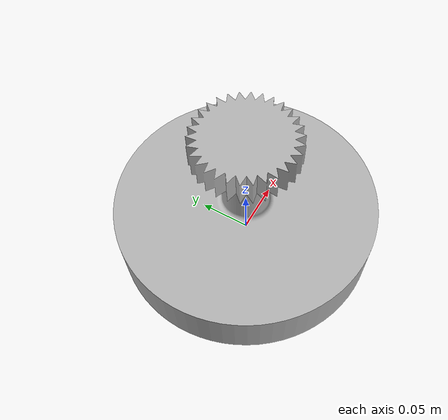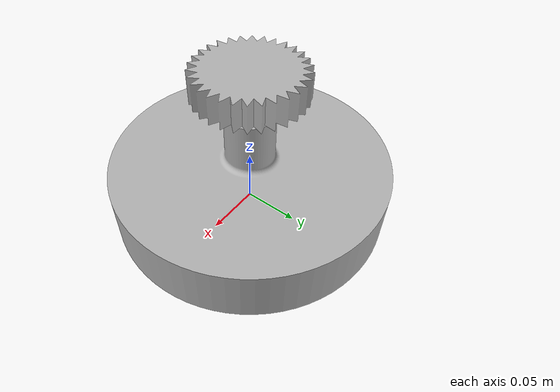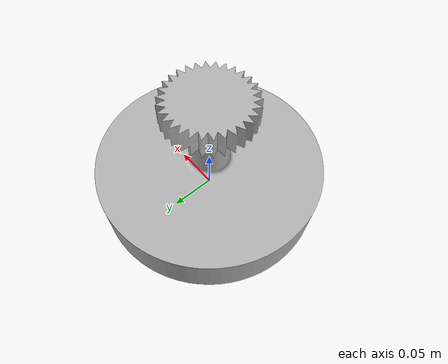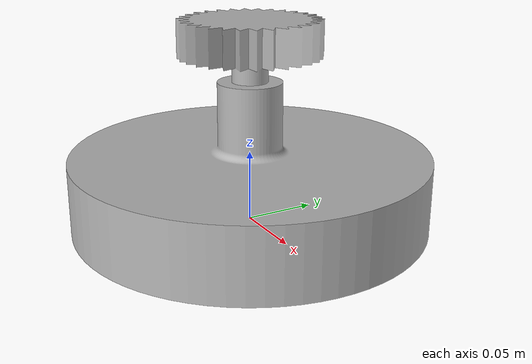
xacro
<?xml version="1.0" ?>

<robot name="gear_stater_motor" xmlns:xacro="http://wiki.ros.org/xacro" >

    <link name="world"/>

    <joint name="pb_world_joint" type="fixed">
        <parent link="world"/>
        <child link="motor_housing"/>
        <origin rpy="0 0 0" xyz="0 0 0"/>
    </joint>

    <link name="motor_housing">
        <visual>
            <origin rpy="0 0 0" xyz="0 0 0"/>
            <geometry>
                <mesh filename="file://$(find sirgas_description)/meshes/Motor_Housing.stl" />
            </geometry>
            <material name="LightGrey">
                <color rgba="0.7 0.7 0.7 1.0" />
            </material>
        </visual>
        <collision>
            <origin rpy="0 0 0" xyz="0 0 0"/>
            <geometry>
                <mesh filename="file://$(find sirgas_description)/meshes/Motor_Housing.stl" />
            </geometry>
        </collision>
        <inertial>
            <mass value="2.64067069"/>
            <origin rpy="0 0 0" xyz="0 0 0"/>
            <inertia ixx="0.01078765" ixy="0.0" ixz="0.0" iyx="0.0" iyy="0.01078765" iyz="0.0" izx="0.0" izy= "0.0" izz="0.02019148"/>
        </inertial>
    </link>

    <joint name="mh_gr_joint" type="continuous">
        <parent link="motor_housing"/>
        <child link="gear_rotator"/>
        <origin rpy="${pi} 0 0" xyz="0.0 0 0.055"/>
        <axis xyz="0 0 1"/>
        <dynamics damping="1.0" friction="0.1"/>
        <limit effort="1000.0" velocity="10.0"/>
    </joint>

    <link name="gear_rotator">
        <visual>
            <origin rpy="0 0 0" xyz="0 0 0"/>
            <geometry>
                <mesh filename="file://$(find sirgas_description)/meshes/Gear_Rotator.stl" />
            </geometry>
            <material name="LightGrey">
                <color rgba="0.7 0.7 0.7 1.0" />
            </material>
        </visual>
        <collision>
            <origin rpy="0 0 0" xyz="0 0 0"/>
            <geometry>
                <mesh filename="file://$(find sirgas_description)/meshes/Gear_Rotator.stl" />
            </geometry>
        </collision>
        <inertial>
            <mass value="0.23"/>
            <origin rpy="0 0 0" xyz="0 0 0"/>
            <inertia ixx="0.0004399" ixy="0.0" ixz="0.0" iyx="0.0" iyy="0.0004399" iyz="0.0" izx="0.0" izy= "0.0" izz="0.00017253"/>
        </inertial>
    </link>

    <!-- ROS2 Control Plugin-->
    <ros2_control name="gsm_control" type="system">
        <hardware>
            <plugin>gz_ros2_control/GazeboSimSystem</plugin>
        </hardware>
        <joint name="mh_gr_joint">
            <command_interface name="velocity">
                <param name="min">-10</param>
                <param name="max">10</param>
            </command_interface>
            <state_interface name="position"/>
            <state_interface name="velocity"/>
        </joint>
    </ros2_control>

    <!-- Fixed Ignition Gazebo plugin for ROS 2 Control -->
    <gazebo>
        <plugin filename="libgz_ros2_control-system.so" name="gz_ros2_control::GazeboSimROS2ControlPlugin">
            <parameters>$(find sirgas_description)/config/gsm_controller.yaml</parameters>
        </plugin>
    </gazebo>

</robot>
